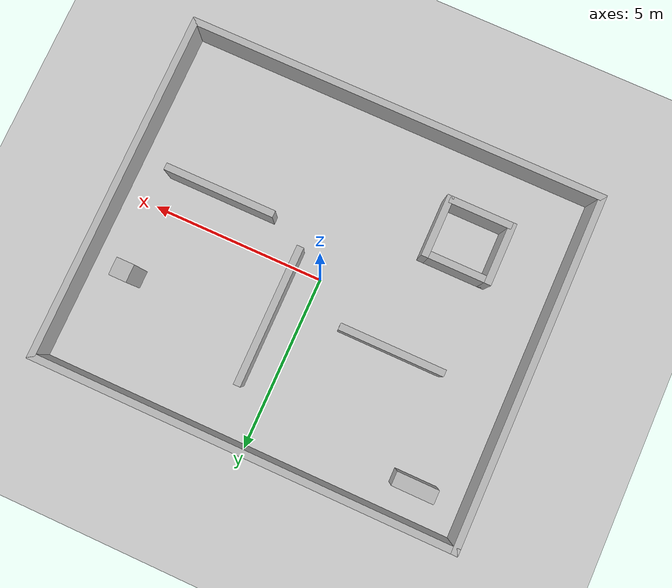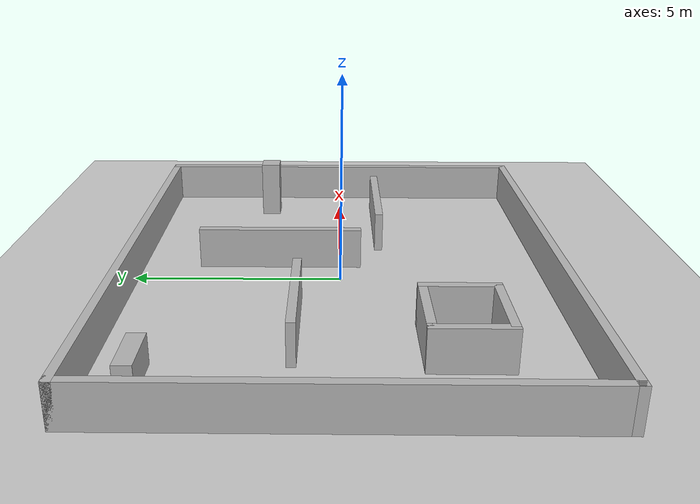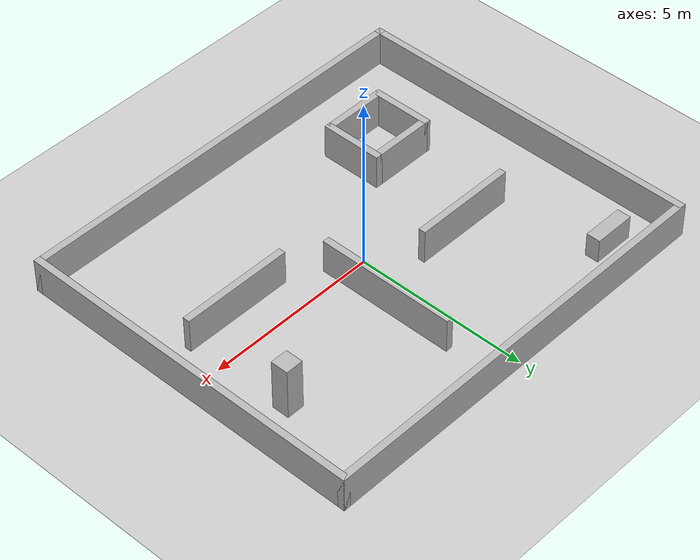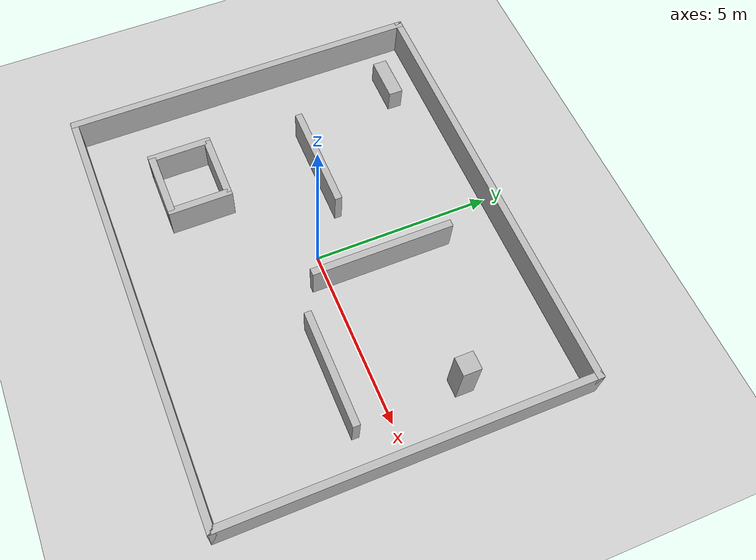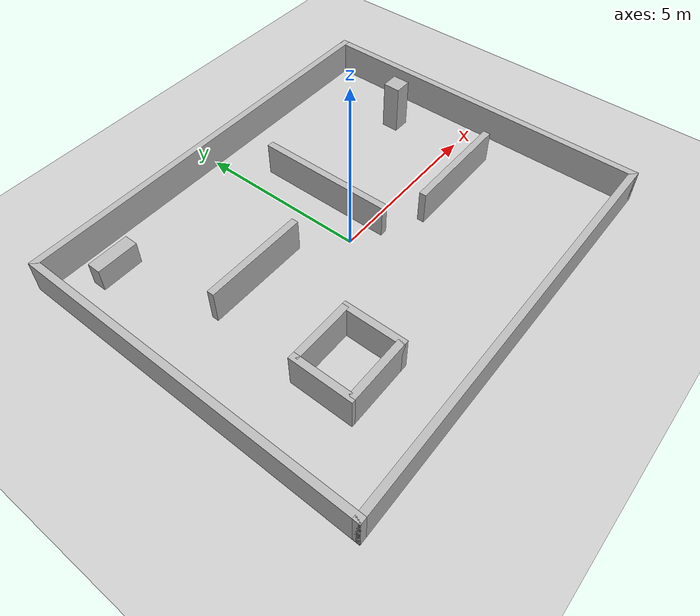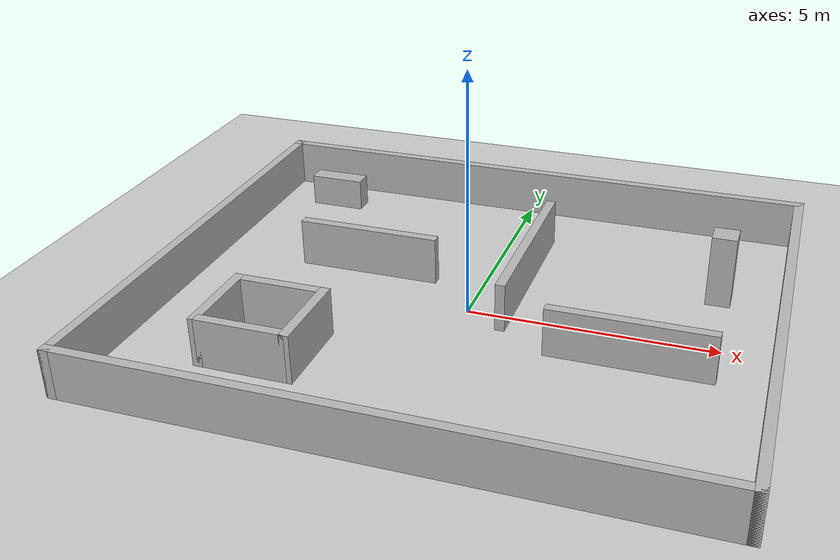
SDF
<?xml version="1.0"?>
<sdf version="1.8">
  <world name="m5_navigation">
    <physics name="1ms" type="ignored">
      <max_step_size>0.001</max_step_size>
      <real_time_factor>1.0</real_time_factor>
    </physics>
    <plugin filename="ignition-gazebo-physics-system" name="ignition::gazebo::systems::Physics"/>
    <plugin filename="ignition-gazebo-user-commands-system" name="ignition::gazebo::systems::UserCommands"/>
    <plugin filename="ignition-gazebo-scene-broadcaster-system" name="ignition::gazebo::systems::SceneBroadcaster"/>
    <plugin filename="ignition-gazebo-sensors-system" name="ignition::gazebo::systems::Sensors">
      <render_engine>ogre2</render_engine>
    </plugin>
    <plugin filename="ignition-gazebo-imu-system" name="ignition::gazebo::systems::Imu"/>
    <gravity>0 0 -9.8</gravity>
    <light type="directional" name="sun">
      <pose>0 0 10 0 0 0</pose>
      <direction>-0.5 0.1 -0.9</direction>
    </light>

    <model name="ground_plane">
      <static>true</static>
      <link name="link">
        <collision name="collision"><geometry><plane><normal>0 0 1</normal><size>100 100</size></plane></geometry></collision>
        <visual name="visual"><geometry><plane><normal>0 0 1</normal><size>100 100</size></plane></geometry></visual>
      </link>
    </model>

    <!-- Every named box below is frozen in config/m5_scenario.yaml. -->
    <model name="boundary_north"><static>true</static><pose>0 5 0.5 0 0 0</pose><link name="link"><collision name="collision"><geometry><box><size>12.2 0.2 1.0</size></box></geometry></collision><visual name="visual"><geometry><box><size>12.2 0.2 1.0</size></box></geometry></visual></link></model>
    <model name="boundary_south"><static>true</static><pose>0 -5 0.5 0 0 0</pose><link name="link"><collision name="collision"><geometry><box><size>12.2 0.2 1.0</size></box></geometry></collision><visual name="visual"><geometry><box><size>12.2 0.2 1.0</size></box></geometry></visual></link></model>
    <model name="boundary_east"><static>true</static><pose>6 0 0.5 0 0 0</pose><link name="link"><collision name="collision"><geometry><box><size>0.2 10.2 1.0</size></box></geometry></collision><visual name="visual"><geometry><box><size>0.2 10.2 1.0</size></box></geometry></visual></link></model>
    <model name="boundary_west"><static>true</static><pose>-6 0 0.5 0 0 0</pose><link name="link"><collision name="collision"><geometry><box><size>0.2 10.2 1.0</size></box></geometry></collision><visual name="visual"><geometry><box><size>0.2 10.2 1.0</size></box></geometry></visual></link></model>

    <!-- Asymmetric interior geometry prevents rotationally ambiguous maps. -->
    <model name="center_vertical"><static>true</static><pose>0.8 1.5 0.5 0 0 0</pose><link name="link"><collision name="collision"><geometry><box><size>0.2 4.0 1.0</size></box></geometry></collision><visual name="visual"><geometry><box><size>0.2 4.0 1.0</size></box></geometry></visual></link></model>
    <model name="northwest_horizontal"><static>true</static><pose>-2.5 1.0 0.5 0 0 0</pose><link name="link"><collision name="collision"><geometry><box><size>3.0 0.2 1.0</size></box></geometry></collision><visual name="visual"><geometry><box><size>3.0 0.2 1.0</size></box></geometry></visual></link></model>
    <model name="southeast_horizontal"><static>true</static><pose>3.4 -1.0 0.5 0 0 0</pose><link name="link"><collision name="collision"><geometry><box><size>3.2 0.2 1.0</size></box></geometry></collision><visual name="visual"><geometry><box><size>3.2 0.2 1.0</size></box></geometry></visual></link></model>
    <model name="landmark_tall"><static>true</static><pose>4.7 2.0 0.75 0 0 0</pose><link name="link"><collision name="collision"><geometry><box><size>0.5 0.5 1.5</size></box></geometry></collision><visual name="visual"><geometry><box><size>0.5 0.5 1.5</size></box></geometry></visual></link></model>
    <model name="landmark_wide"><static>true</static><pose>-4.5 4.0 0.35 0 0 0</pose><link name="link"><collision name="collision"><geometry><box><size>1.2 0.4 0.7</size></box></geometry></collision><visual name="visual"><geometry><box><size>1.2 0.4 0.7</size></box></geometry></visual></link></model>

    <!-- Closed pocket provides a deterministic unreachable goal. -->
    <model name="pocket_north"><static>true</static><pose>-3.2 -1.7 0.5 0 0 0</pose><link name="link"><collision name="collision"><geometry><box><size>1.8 0.2 1.0</size></box></geometry></collision><visual name="visual"><geometry><box><size>1.8 0.2 1.0</size></box></geometry></visual></link></model>
    <model name="pocket_south"><static>true</static><pose>-3.2 -3.3 0.5 0 0 0</pose><link name="link"><collision name="collision"><geometry><box><size>1.8 0.2 1.0</size></box></geometry></collision><visual name="visual"><geometry><box><size>1.8 0.2 1.0</size></box></geometry></visual></link></model>
    <model name="pocket_east"><static>true</static><pose>-2.3 -2.5 0.5 0 0 0</pose><link name="link"><collision name="collision"><geometry><box><size>0.2 1.8 1.0</size></box></geometry></collision><visual name="visual"><geometry><box><size>0.2 1.8 1.0</size></box></geometry></visual></link></model>
    <model name="pocket_west"><static>true</static><pose>-4.1 -2.5 0.5 0 0 0</pose><link name="link"><collision name="collision"><geometry><box><size>0.2 1.8 1.0</size></box></geometry></collision><visual name="visual"><geometry><box><size>0.2 1.8 1.0</size></box></geometry></visual></link></model>
  </world>
</sdf>
